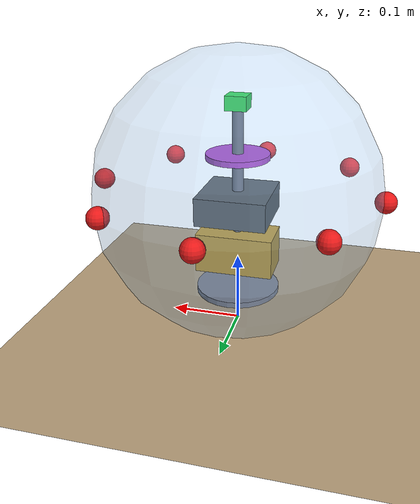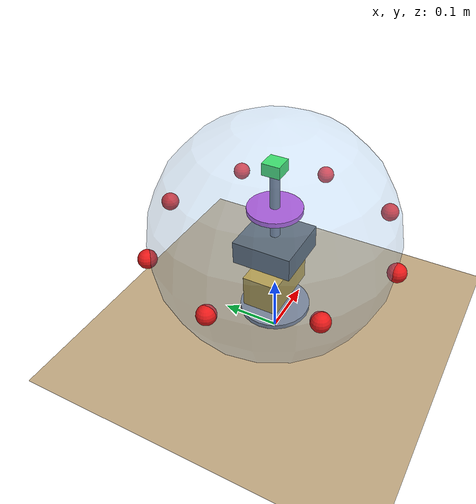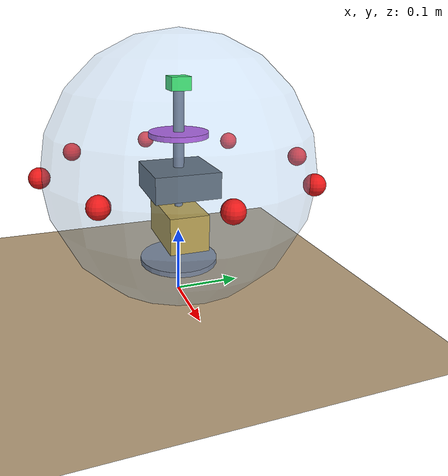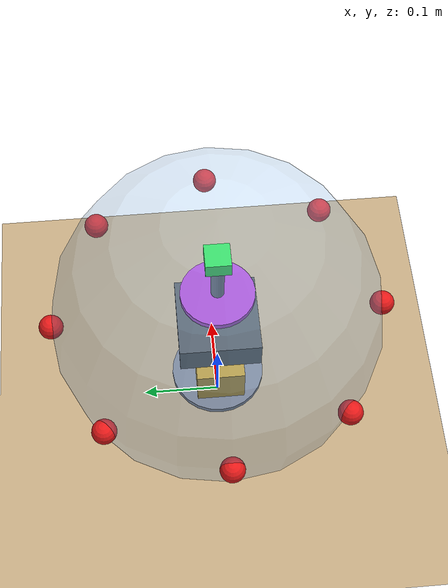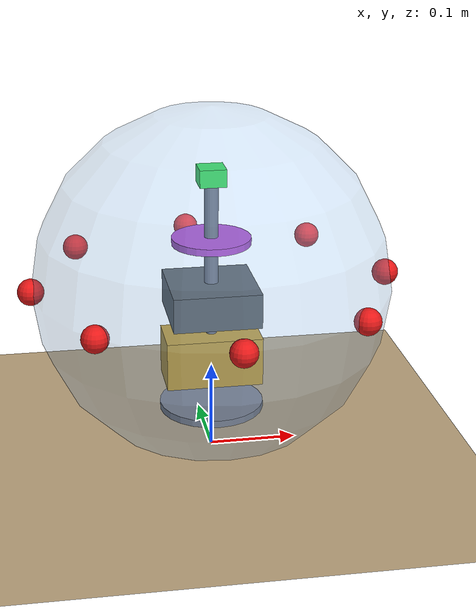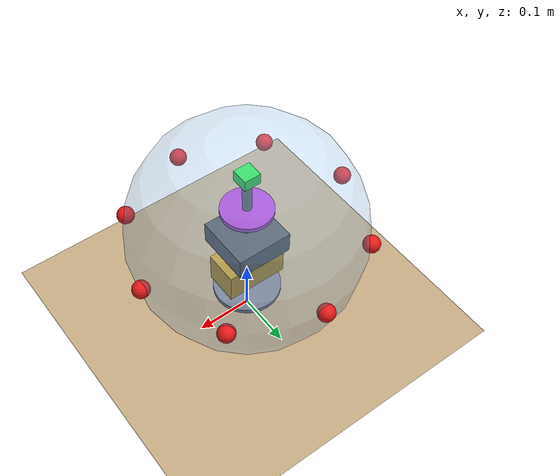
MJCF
<mujoco model="spherebot_v1">
  <compiler angle="radian"/>
  <option timestep="0.001" gravity="0 0 -9.81" cone="pyramidal"/>
  <default>
    <geom friction="0.4 0.001 0.0005"/>
  </default>
  <worldbody>
    <light pos="2 -3 4" dir="-0.4 0.6 -1" diffuse="0.9 0.9 0.9"/>
    <light pos="-2 3 4" dir="0.4 -0.6 -1" diffuse="0.5 0.5 0.5"/>
    <geom name="floor" type="plane" size="30 30 0.1" condim="6" rgba="0.75 0.65 0.5 1"/>
    <body name="shell" pos="0 0 0.203">
      <freejoint name="shell_free"/>
      <inertial mass="1.5535426999413815" pos="0 0 0" diaginertia="0.04267996074792293 0.04267996074792293 0.04267996074792293"/>
      <geom name="shellg" type="sphere" size="0.203" condim="6" rgba="0.55 0.75 0.95 0.30"/>
      <geom type="sphere" size="0.015" pos="0.2030 0.0000 0" rgba="0.9 0.1 0.1 1" contype="0" conaffinity="0"/>
<geom type="sphere" size="0.015" pos="0.1435 0.1435 0" rgba="0.9 0.1 0.1 1" contype="0" conaffinity="0"/>
<geom type="sphere" size="0.015" pos="0.0000 0.2030 0" rgba="0.9 0.1 0.1 1" contype="0" conaffinity="0"/>
<geom type="sphere" size="0.015" pos="-0.1435 0.1435 0" rgba="0.9 0.1 0.1 1" contype="0" conaffinity="0"/>
<geom type="sphere" size="0.015" pos="-0.2030 0.0000 0" rgba="0.9 0.1 0.1 1" contype="0" conaffinity="0"/>
<geom type="sphere" size="0.015" pos="-0.1435 -0.1435 0" rgba="0.9 0.1 0.1 1" contype="0" conaffinity="0"/>
<geom type="sphere" size="0.015" pos="-0.0000 -0.2030 0" rgba="0.9 0.1 0.1 1" contype="0" conaffinity="0"/>
<geom type="sphere" size="0.015" pos="0.1435 -0.1435 0" rgba="0.9 0.1 0.1 1" contype="0" conaffinity="0"/>

      <site name="shell_ctr" pos="0 0 0" size="0.005"/>
      <!-- chassis: hangs from diameter axle (bearing hinge y), elastomer-isolated (slide z) -->
      <body name="chassis" pos="0 0 0">
        <inertial mass="0.985" pos="0 0 -0.02" diaginertia="0.006 0.006 0.003"/>
        <joint name="iso_z" type="slide" axis="0 0 1" stiffness="50000.0" damping="185.0"
               range="-0.012 0.012" limited="true"/>
        <joint name="bearing_y" type="hinge" axis="0 1 0" frictionloss="0.002"/>
        <geom type="box" size="0.05 0.05 0.02" pos="0 0 -0.02" rgba="0.3 0.3 0.3 1" contype="0" conaffinity="0"/>
        <geom type="capsule" size="0.008" fromto="0 0 0 0 0 0.12" rgba="0.4 0.4 0.45 1" contype="0" conaffinity="0"/>
        <geom name="camera" type="box" size="0.015 0.015 0.01" pos="0 0 0.125" rgba="0.1 0.9 0.2 1" contype="0" conaffinity="0"/>
        <camera name="campov" pos="0 0 0.125" xyaxes="1 0 0 0 0 1" fovy="62"/>
        <light name="headlight" pos="0 0 0.12" dir="1 0 -0.15" directional="false" diffuse="0.8 0.8 0.75" specular="0.2 0.2 0.2"/>
        <site name="cam_site" pos="0 0 0.125" size="0.005"/>
        <!-- pendulum: battery + ballast, lateral-lean hinge x for steering -->
        <body name="pendulum" pos="0 0 0">
          <inertial mass="0.8" pos="0 0 -0.12" diaginertia="0.0115 0.0115 0.0015"/>
          <joint name="steer_x" type="hinge" axis="1 0 0" frictionloss="0.002"/>
          <geom type="cylinder" size="0.06 0.004" pos="0 0 -0.15" rgba="0.5 0.5 0.55 1" contype="0" conaffinity="0"/>
          <geom type="box" size="0.055 0.03 0.028" pos="0 0 -0.09" rgba="0.8 0.6 0.1 1" contype="0" conaffinity="0"/>
          <geom type="capsule" size="0.006" fromto="0 0 0 0 0 -0.12" rgba="0.4 0.4 0.45 1" contype="0" conaffinity="0"/>
        </body>
        <!-- yaw flywheel for spin/twirl -->
        <body name="flywheel" pos="0 0 0.05">
          <inertial mass="0.4" pos="0 0 0" diaginertia="0.0002025 0.0002025 0.000405"/>
          <joint name="fly_z" type="hinge" axis="0 0 1" frictionloss="0.0005" damping="0.0001"/>
          <geom type="cylinder" size="0.045 0.004" rgba="0.7 0.2 0.8 1" contype="0" conaffinity="0"/>
        </body>
      </body>
    </body>
  </worldbody>
  <actuator>
    <motor name="drive" joint="bearing_y" ctrllimited="true" ctrlrange="-2.6477955 2.6477955"/>
    <motor name="steer" joint="steer_x" ctrllimited="true" ctrlrange="-2.6477955 2.6477955"/>
    <motor name="spin" joint="fly_z" ctrllimited="true" ctrlrange="-0.08 0.08"/>
  </actuator>
</mujoco>
